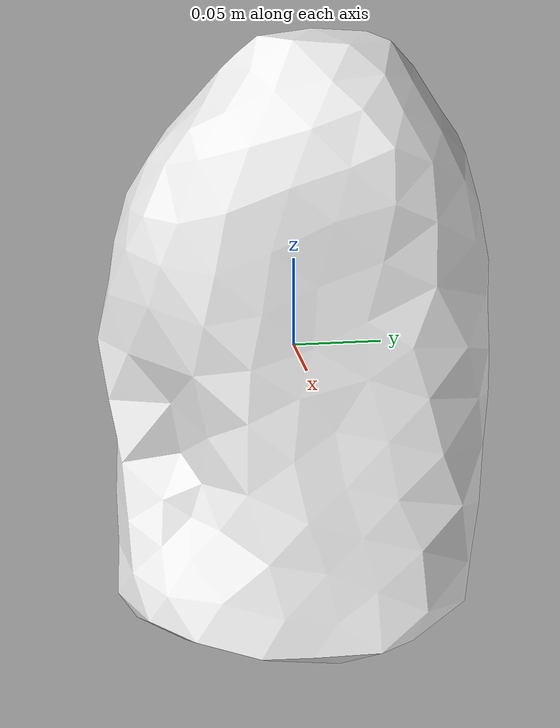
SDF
<?xml version="1.0" ?><sdf version="1.5"><model name="persil-detergent">
<link name="link">
<pose>0 0 0 0 0 0</pose>
<inertial>
<pose>0 0 0 0 0 0</pose>
<mass>1</mass>
<inertia>
<ixx>0.014526083</ixx>
<ixy>0</ixy><iyy>0.012634042</iyy>
<ixz>0</ixz><iyz>0</iyz><izz>0.006184625</izz>
</inertia>
</inertial>
<visual name="visual">
<pose>0 0 0 0 0 0</pose>
<geometry><mesh><uri>model://persil-detergent-centered/meshes/persil-detergent-centered.dae</uri></mesh></geometry>
<material><script><uri>file://media/materials/scripts/gazebo.material</uri><name>Gazebo/WhiteGlow</name></script></material></visual>
<collision name="collision"><pose>0 0 0 0 0 0</pose><geometry><mesh><uri>model://persil-detergent-centered/meshes/persil-detergent-centered.dae</uri></mesh></geometry>
<surface><friction><ode><mu>1.000000</mu><mu2>1.000000</mu2></ode></friction></surface>
</collision></link></model></sdf>
